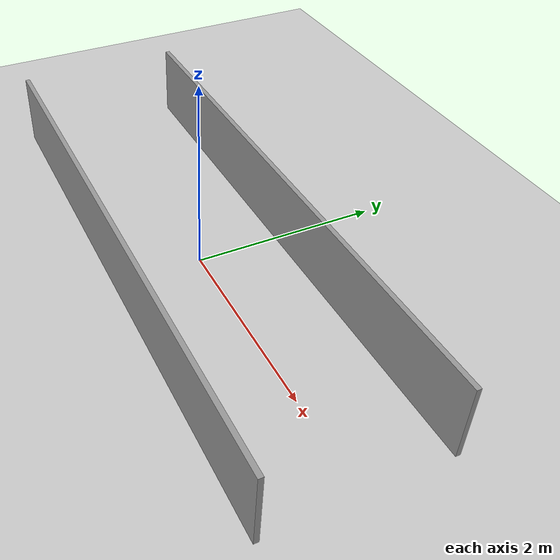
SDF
<?xml version="1.0" ?>
<sdf version="1.6">
  <world name="wide_corridor">
    <include><uri>model://ground_plane</uri></include>
    <include><uri>model://sun</uri></include>

    <!-- Walls 1.8m apart (wide corridor) -->
    <model name="wall_left">
      <static>true</static>
      <pose>0 0.9 0.4 0 0 0</pose>
      <link name="link">
        <collision name="collision"><geometry><box><size>6 0.05 0.8</size></box></geometry></collision>
        <visual name="visual"><geometry><box><size>6 0.05 0.8</size></box></geometry>
          <material><ambient>0.6 0.6 0.6 1</ambient></material></visual>
      </link>
    </model>
    <model name="wall_right">
      <static>true</static>
      <pose>0 -0.9 0.4 0 0 0</pose>
      <link name="link">
        <collision name="collision"><geometry><box><size>6 0.05 0.8</size></box></geometry></collision>
        <visual name="visual"><geometry><box><size>6 0.05 0.8</size></box></geometry>
          <material><ambient>0.6 0.6 0.6 1</ambient></material></visual>
      </link>
    </model>

    <physics type="ode">
      <max_step_size>0.001</max_step_size>
      <real_time_factor>1</real_time_factor>
    </physics>
  </world>
</sdf>
